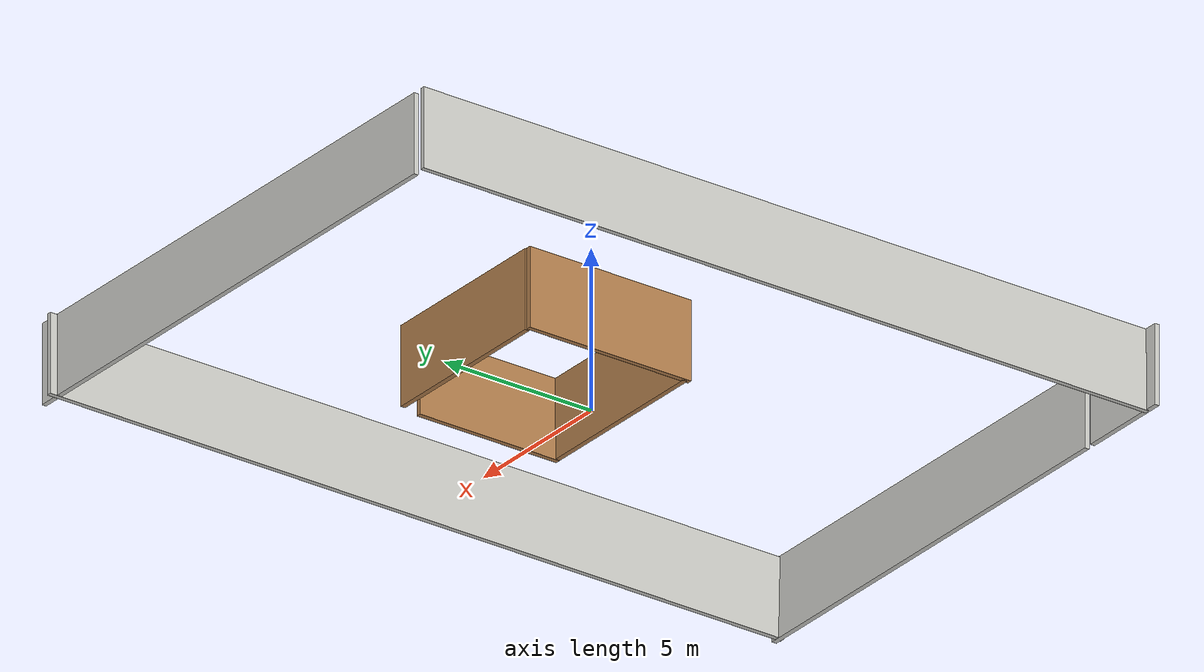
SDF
<?xml version='1.0'?>
<sdf version='1.7'>
  <model name='Untitled'>
    <pose>-128904 -55039.7 0 0 -0 0</pose>
    <link name='Wall_0'>
      <collision name='Wall_0_Collision'>
        <geometry>
          <box>
            <size>24.5 0.15 2.5</size>
          </box>
        </geometry>
        <pose>0 0 1.25 0 -0 0</pose>
      </collision>
      <visual name='Wall_0_Visual'>
        <pose>0 0 1.25 0 -0 0</pose>
        <geometry>
          <box>
            <size>24.5 0.15 2.5</size>
          </box>
        </geometry>
        <material>
          <script>
            <uri>file://media/materials/scripts/gazebo.material</uri>
            <name>Gazebo/Grey</name>
          </script>
          <ambient>1 1 1 1</ambient>
        </material>
        <meta>
          <layer>0</layer>
        </meta>
      </visual>
      <pose>128240 55247.2 0 0 -0 -2.0944</pose>
    </link>
    <link name='Wall_14'>
      <collision name='Wall_14_Collision'>
        <geometry>
          <box>
            <size>634358 0.15 2.5</size>
          </box>
        </geometry>
        <pose>0 0 1.25 0 -0 0</pose>
      </collision>
      <visual name='Wall_14_Visual'>
        <pose>0 0 1.25 0 -0 0</pose>
        <geometry>
          <box>
            <size>634358 0.15 2.5</size>
          </box>
        </geometry>
        <material>
          <script>
            <uri>file://media/materials/scripts/gazebo.material</uri>
            <name>Gazebo/Grey</name>
          </script>
          <ambient>1 1 1 1</ambient>
        </material>
        <meta>
          <layer>0</layer>
        </meta>
      </visual>
      <pose>-593983 -0.007813 0 0 -0 -1.5708</pose>
    </link>
    <link name='Wall_15'>
      <collision name='Wall_15_Collision'>
        <geometry>
          <box>
            <size>514882 0.15 2.5</size>
          </box>
        </geometry>
        <pose>0 0 1.25 0 -0 0</pose>
      </collision>
      <visual name='Wall_15_Visual'>
        <pose>0 0 1.25 0 -0 0</pose>
        <geometry>
          <box>
            <size>514882 0.15 2.5</size>
          </box>
        </geometry>
        <material>
          <script>
            <uri>file://media/materials/scripts/gazebo.material</uri>
            <name>Gazebo/Grey</name>
          </script>
          <ambient>1 1 1 1</ambient>
        </material>
        <meta>
          <layer>0</layer>
        </meta>
      </visual>
      <pose>-465263 -94228.7 0 0 -0 1.0472</pose>
    </link>
    <link name='Wall_16'>
      <collision name='Wall_16_Collision'>
        <geometry>
          <box>
            <size>930526 0.15 2.5</size>
          </box>
        </geometry>
        <pose>0 0 1.25 0 -0 0</pose>
      </collision>
      <visual name='Wall_16_Visual'>
        <pose>0 0 1.25 0 -0 0</pose>
        <geometry>
          <box>
            <size>930526 0.15 2.5</size>
          </box>
        </geometry>
        <material>
          <script>
            <uri>file://media/materials/scripts/gazebo.material</uri>
            <name>Gazebo/Grey</name>
          </script>
          <ambient>1 1 1 1</ambient>
        </material>
        <meta>
          <layer>0</layer>
        </meta>
      </visual>
      <pose>128720 128722 0 0 -0 0</pose>
    </link>
    <link name='Wall_2'>
      <collision name='Wall_2_Collision'>
        <geometry>
          <box>
            <size>390.5 0.15 2.5</size>
          </box>
        </geometry>
        <pose>0 0 1.25 0 -0 0</pose>
      </collision>
      <visual name='Wall_2_Visual'>
        <pose>0 0 1.25 0 -0 0</pose>
        <geometry>
          <box>
            <size>390.5 0.15 2.5</size>
          </box>
        </geometry>
        <material>
          <script>
            <uri>file://media/materials/scripts/gazebo.material</uri>
            <name>Gazebo/Grey</name>
          </script>
          <ambient>1 1 1 1</ambient>
        </material>
        <meta>
          <layer>0</layer>
        </meta>
      </visual>
      <pose>128662 55191.5 0 0 -0 0</pose>
    </link>
    <link name='Wall_20'>
      <collision name='Wall_20_Collision'>
        <geometry>
          <box>
            <size>25 0.15 2.5</size>
          </box>
        </geometry>
        <pose>0 0 1.25 0 -0 0</pose>
      </collision>
      <visual name='Wall_20_Visual'>
        <pose>0 0 1.25 0 -0 0</pose>
        <geometry>
          <box>
            <size>25 0.15 2.5</size>
          </box>
        </geometry>
        <material>
          <script>
            <uri>file://media/materials/scripts/gazebo.material</uri>
            <name>Gazebo/CeilingTiled</name>
          </script>
          <ambient>1 1 1 1</ambient>
        </material>
        <meta>
          <layer>0</layer>
        </meta>
      </visual>
      <pose>128912 55039.8 0 0 -0 -1.5708</pose>
    </link>
    <link name='Wall_21'>
      <collision name='Wall_21_Collision'>
        <geometry>
          <box>
            <size>14.5 0.15 2.5</size>
          </box>
        </geometry>
        <pose>0 0 1.25 0 -0 0</pose>
      </collision>
      <visual name='Wall_21_Visual'>
        <pose>0 0 1.25 0 -0 0</pose>
        <geometry>
          <box>
            <size>14.5 0.15 2.5</size>
          </box>
        </geometry>
        <material>
          <script>
            <uri>file://media/materials/scripts/gazebo.material</uri>
            <name>Gazebo/CeilingTiled</name>
          </script>
          <ambient>1 1 1 1</ambient>
        </material>
        <meta>
          <layer>0</layer>
        </meta>
      </visual>
      <pose>128905 55027.4 0 0 -0 3.14159</pose>
    </link>
    <link name='Wall_22'>
      <collision name='Wall_22_Collision'>
        <geometry>
          <box>
            <size>3 0.15 2.5</size>
          </box>
        </geometry>
        <pose>0 0 1.25 0 -0 0</pose>
      </collision>
      <visual name='Wall_22_Visual'>
        <pose>0 0 1.25 0 -0 0</pose>
        <geometry>
          <box>
            <size>3 0.15 2.5</size>
          </box>
        </geometry>
        <material>
          <script>
            <uri>file://media/materials/scripts/gazebo.material</uri>
            <name>Gazebo/CeilingTiled</name>
          </script>
          <ambient>1 1 1 1</ambient>
        </material>
        <meta>
          <layer>0</layer>
        </meta>
      </visual>
      <pose>128896 55027.4 0 0 -0 3.14159</pose>
    </link>
    <link name='Wall_23'>
      <collision name='Wall_23_Collision'>
        <geometry>
          <box>
            <size>24.75 0.15 2.5</size>
          </box>
        </geometry>
        <pose>0 0 1.25 0 -0 0</pose>
      </collision>
      <visual name='Wall_23_Visual'>
        <pose>0 0 1.25 0 -0 0</pose>
        <geometry>
          <box>
            <size>24.75 0.15 2.5</size>
          </box>
        </geometry>
        <material>
          <script>
            <uri>file://media/materials/scripts/gazebo.material</uri>
            <name>Gazebo/CeilingTiled</name>
          </script>
          <ambient>1 1 1 1</ambient>
        </material>
        <meta>
          <layer>0</layer>
        </meta>
      </visual>
      <pose>128895 55039.7 0 0 -0 1.5708</pose>
    </link>
    <link name='Wall_24'>
      <collision name='Wall_24_Collision'>
        <geometry>
          <box>
            <size>17.25 0.15 2.5</size>
          </box>
        </geometry>
        <pose>0 0 1.25 0 -0 0</pose>
      </collision>
      <visual name='Wall_24_Visual'>
        <pose>0 0 1.25 0 -0 0</pose>
        <geometry>
          <box>
            <size>17.25 0.15 2.5</size>
          </box>
        </geometry>
        <material>
          <script>
            <uri>file://media/materials/scripts/gazebo.material</uri>
            <name>Gazebo/CeilingTiled</name>
          </script>
          <ambient>1 1 1 1</ambient>
        </material>
        <meta>
          <layer>0</layer>
        </meta>
      </visual>
      <pose>128904 55052 0 0 -0 0</pose>
    </link>
    <link name='Wall_26'>
      <collision name='Wall_26_Collision'>
        <geometry>
          <box>
            <size>5.75 0.15 2.5</size>
          </box>
        </geometry>
        <pose>0 0 1.25 0 -0 0</pose>
      </collision>
      <visual name='Wall_26_Visual'>
        <pose>0 0 1.25 0 -0 0</pose>
        <geometry>
          <box>
            <size>5.75 0.15 2.5</size>
          </box>
        </geometry>
        <material>
          <script>
            <uri>file://media/materials/scripts/gazebo.material</uri>
            <name>Gazebo/Wood</name>
          </script>
          <ambient>1 1 1 1</ambient>
        </material>
        <meta>
          <layer>0</layer>
        </meta>
      </visual>
      <pose>128904 55044 0 0 -0 3.14159</pose>
    </link>
    <link name='Wall_27'>
      <collision name='Wall_27_Collision'>
        <geometry>
          <box>
            <size>5.5 0.15 2.5</size>
          </box>
        </geometry>
        <pose>0 0 1.25 0 -0 0</pose>
      </collision>
      <visual name='Wall_27_Visual'>
        <pose>0 0 1.25 0 -0 0</pose>
        <geometry>
          <box>
            <size>5.5 0.15 2.5</size>
          </box>
        </geometry>
        <material>
          <script>
            <uri>file://media/materials/scripts/gazebo.material</uri>
            <name>Gazebo/Wood</name>
          </script>
          <ambient>1 1 1 1</ambient>
        </material>
        <meta>
          <layer>0</layer>
        </meta>
      </visual>
      <pose>128901 55041.3 0 0 -0 -1.5708</pose>
    </link>
    <link name='Wall_28'>
      <collision name='Wall_28_Collision'>
        <geometry>
          <box>
            <size>6 0.15 2.5</size>
          </box>
        </geometry>
        <pose>0 0 1.25 0 -0 0</pose>
      </collision>
      <visual name='Wall_28_Visual'>
        <pose>0 0 1.25 0 -0 0</pose>
        <geometry>
          <box>
            <size>6 0.15 2.5</size>
          </box>
        </geometry>
        <material>
          <script>
            <uri>file://media/materials/scripts/gazebo.material</uri>
            <name>Gazebo/Wood</name>
          </script>
          <ambient>1 1 1 1</ambient>
        </material>
        <meta>
          <layer>0</layer>
        </meta>
      </visual>
      <pose>128904 55038.7 0 0 -0 0</pose>
    </link>
    <link name='Wall_29'>
      <collision name='Wall_29_Collision'>
        <geometry>
          <box>
            <size>4.75 0.15 2.5</size>
          </box>
        </geometry>
        <pose>0 0 1.25 0 -0 0</pose>
      </collision>
      <visual name='Wall_29_Visual'>
        <pose>0 0 1.25 0 -0 0</pose>
        <geometry>
          <box>
            <size>4.75 0.15 2.5</size>
          </box>
        </geometry>
        <material>
          <script>
            <uri>file://media/materials/scripts/gazebo.material</uri>
            <name>Gazebo/Wood</name>
          </script>
          <ambient>1 1 1 1</ambient>
        </material>
        <meta>
          <layer>0</layer>
        </meta>
      </visual>
      <pose>128907 55041 0 0 -0 1.5708</pose>
    </link>
    <static>1</static>
  </model>
</sdf>
